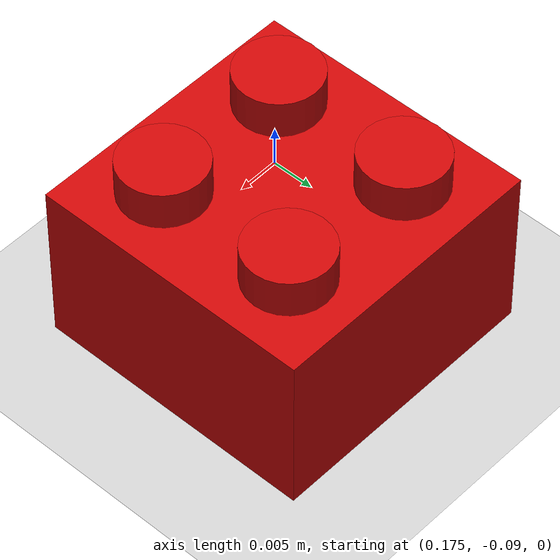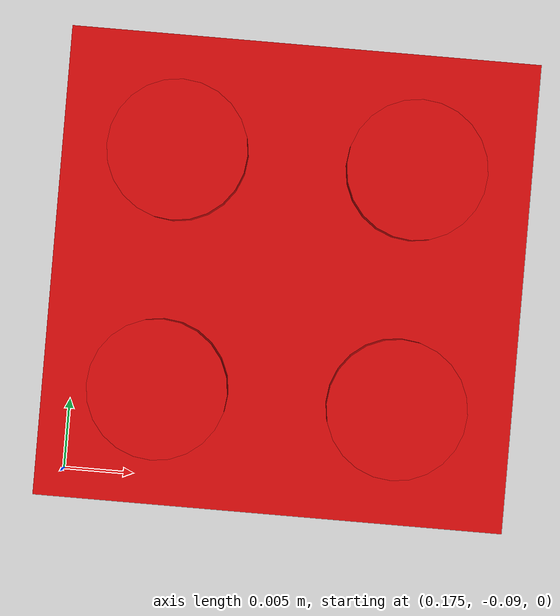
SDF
<?xml version="1.0"?>
<sdf version="1.6">
  <world name="lego_lab">
    <include><uri>model://ground_plane</uri></include>
    <include><uri>model://sun</uri></include>
    <model name="red_duplo_2x2">
      <pose>0.19 -0.075 0.0096 0 0 0</pose>
      <link name="brick">
        <collision name="body"><geometry><box><size>0.0318 0.0318 0.0192</size></box></geometry></collision>
        <visual name="body"><geometry><box><size>0.0318 0.0318 0.0192</size></box></geometry><material><ambient>0.8 0.03 0.03 1</ambient><diffuse>0.8 0.03 0.03 1</diffuse></material></visual>
        <visual name="stud_1"><pose>-0.008 -0.008 0.0118 0 0 0</pose><geometry><cylinder><radius>0.0047</radius><length>0.0044</length></cylinder></geometry><material><ambient>0.8 0.03 0.03 1</ambient><diffuse>0.8 0.03 0.03 1</diffuse></material></visual>
        <visual name="stud_2"><pose>0.008 -0.008 0.0118 0 0 0</pose><geometry><cylinder><radius>0.0047</radius><length>0.0044</length></cylinder></geometry><material><ambient>0.8 0.03 0.03 1</ambient><diffuse>0.8 0.03 0.03 1</diffuse></material></visual>
        <visual name="stud_3"><pose>-0.008 0.008 0.0118 0 0 0</pose><geometry><cylinder><radius>0.0047</radius><length>0.0044</length></cylinder></geometry><material><ambient>0.8 0.03 0.03 1</ambient><diffuse>0.8 0.03 0.03 1</diffuse></material></visual>
        <visual name="stud_4"><pose>0.008 0.008 0.0118 0 0 0</pose><geometry><cylinder><radius>0.0047</radius><length>0.0044</length></cylinder></geometry><material><ambient>0.8 0.03 0.03 1</ambient><diffuse>0.8 0.03 0.03 1</diffuse></material></visual>
      </link>
    </model>
  </world>
</sdf>
